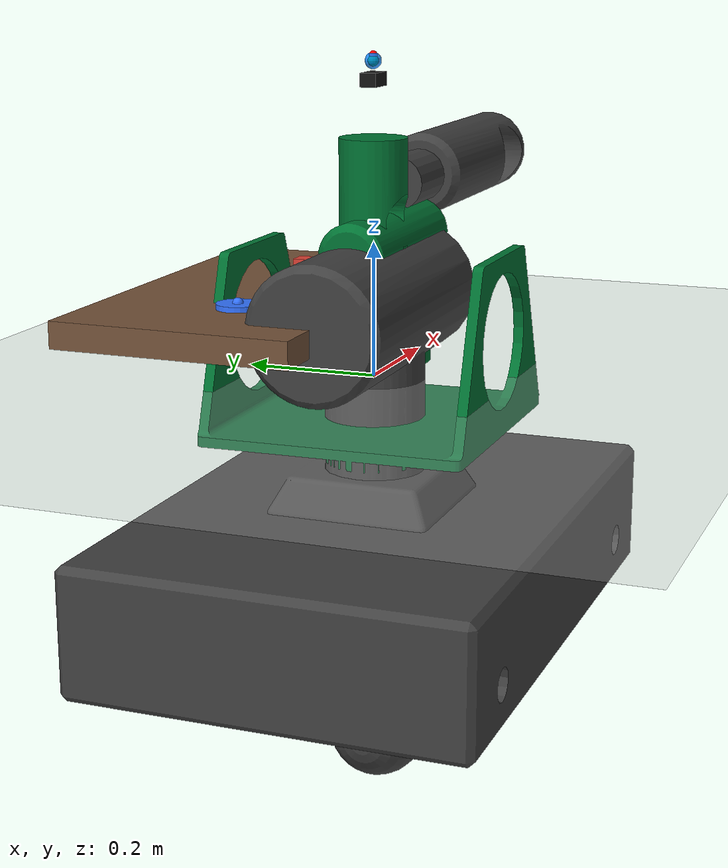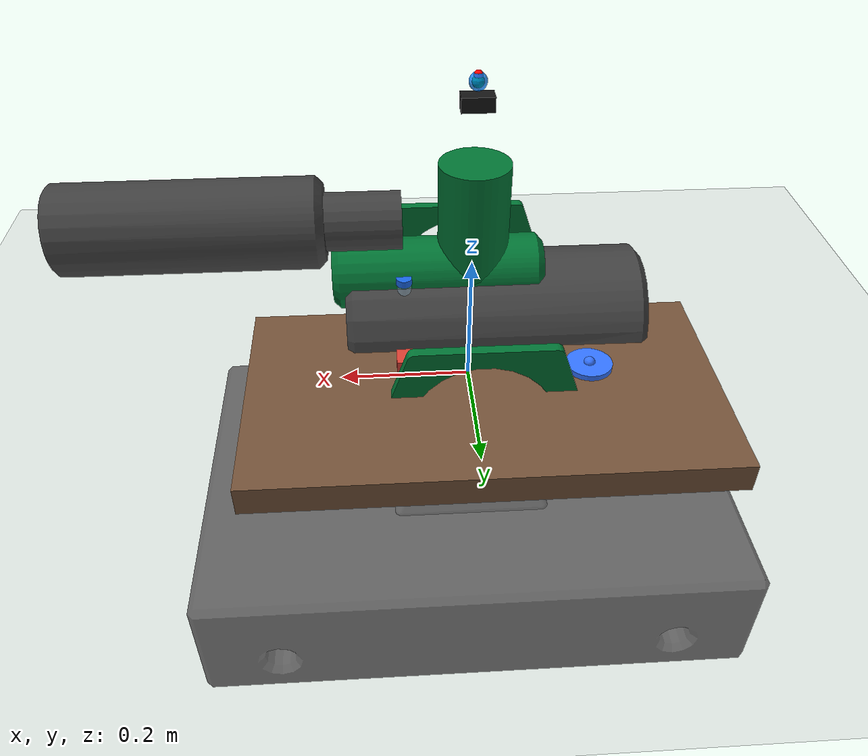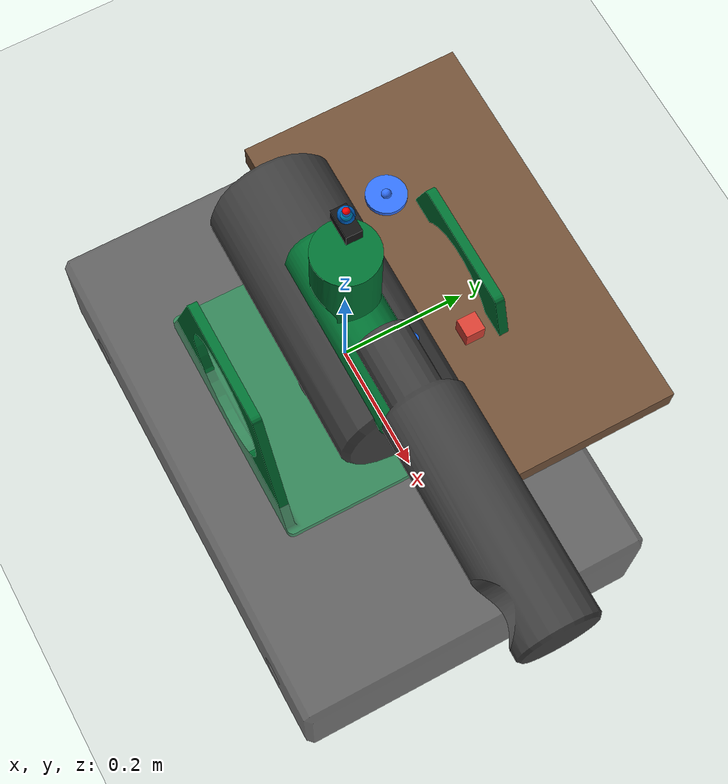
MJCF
<mujoco model="dofbot">
  <compiler angle="radian" meshdir="meshes" autolimits="true"/>
  <option timestep="0.005" gravity="0 0 -9.81" integrator="RK4"/>
  <size njmax="3000" nconmax="800"/>

  <visual>
    <headlight ambient="0.5 0.5 0.5" diffuse="0.8 0.8 0.8" specular="0.15 0.15 0.15"/>
    <rgba haze="0.15 0.25 0.35 1"/>
  </visual>

  <statistic center="0 0 0.18" extent="0.50"/>

  <default>
    <default class="robot">
      <joint armature="0.01" damping="0.25" frictionloss="0.02"/>
      <geom type="mesh" density="700" condim="3" contype="1" conaffinity="1" group="1"/>
    </default>

    <default class="visual_only">
      <geom type="mesh" density="0" contype="0" conaffinity="0" group="2"/>
    </default>

    <default class="col">
      <geom type="capsule" rgba="0 0 0 0"
            friction="0.9 0.05 0.01"
            condim="4" solref="0.004 1" solimp="0.9 0.95 0.001"
            contype="1" conaffinity="1" group="3"/>
    </default>

    <default class="finger_col">
      <geom type="box"
            friction="1.2 0.05 0.01"
            condim="4" solref="0.003 1" solimp="0.9 0.95 0.001"
            contype="1" conaffinity="1" group="3"/>
    </default>
  </default>

  <asset>
    <material name="mat_gray"  rgba="0.25 0.25 0.25 1"/>
    <material name="mat_green" rgba="0.0 0.45 0.20 1"/>
    <material name="mat_white" rgba="0.75 0.75 0.75 1"/>
    <material name="mat_black" rgba="0.08 0.08 0.08 1"/>
    <material name="mat_goal"  rgba="1 0.2 0.2 0.9"/>
    <material name="mat_table" rgba="0.45 0.32 0.22 1"/>
    <material name="mat_cube"  rgba="0.85 0.25 0.20 1"/>

    <texture name="tex_floor_checker"
             type="2d"
             builtin="checker"
             rgb1="0.82 0.82 0.82"
             rgb2="0.62 0.62 0.62"
             width="512"
             height="512"/>

    <material name="mat_floor_checker"
              texture="tex_floor_checker"
              texrepeat="8 8"
              texuniform="true"
              reflectance="0.05"/>

    <mesh name="base_link_mesh" file="base_link.STL"/>
    <mesh name="link1_mesh" file="link1.STL"/>
    <mesh name="link2_mesh" file="link2.STL"/>
    <mesh name="link3_mesh" file="link3.STL"/>
    <mesh name="link4_mesh" file="link4.STL"/>
    <mesh name="link5_mesh" file="link5.STL"/>
  </asset>

  <worldbody>
    <light pos="0 0 1.5" dir="0 0 -1"/>
    <camera name="front_cam" pos="0 1.1 0.7" mode="targetbody" target="base_link"/>
    <geom name="floor" type="plane" size="2 2 0.1" material="mat_floor_checker"/>

    <body name="table" pos="0.00 0.18 0.10">
      <geom name="table_geom" type="box" size="0.32 0.18 0.02" material="mat_table"
            friction="1.0 0.05 0.01"/>
    </body>

    <body name="object_main" pos="0.10 0.15 0.136">
      <freejoint name="object_main_free"/>
      <inertial pos="0 0 0" mass="0.03" diaginertia="0.00001 0.00001 0.00001"/>
      <geom name="object_main_geom" type="box" size="0.015 0.015 0.015" material="mat_cube"
            friction="1.1 0.05 0.01"/>
      <site name="object_main_site" pos="0 0 0" size="0.007" rgba="1 1 0 1"/>
    </body>

    <body name="object_bottle" pos="0.10 0.05 0.150">
      <freejoint name="object_bottle_free"/>
      <inertial pos="0 0 -0.01" mass="0.03" diaginertia="0.00001 0.00001 0.00001"/>

      <geom name="object_bottle_geom" type="cylinder" size="0.015 0.030" rgba="0.7 0.85 0.95 0.5"
            friction="1.1 0.05 0.01"/>

      <geom name="object_bottle_neck" type="cylinder" size="0.010 0.010" pos="0 0 0.040"
            rgba="0.7 0.85 0.95 0.5" friction="1.1 0.05 0.01"/>

      <geom name="object_bottle_cap" type="cylinder" size="0.011 0.005" pos="0 0 0.055"
            rgba="0.1 0.4 0.9 1" friction="1.1 0.05 0.01"/>

      <site name="object_bottle_site" pos="0 0 0" size="0.007" rgba="1 1 0 1"/>
    </body>

    <body name="target_blue" pos="-0.15 0.15 0.124">
      <geom name="target_blue_geom" type="cylinder" size="0.032 0.004"
            rgba="0.2 0.45 1.0 0.9" contype="0" conaffinity="0"/>
      <site name="target_blue_site" pos="0 0 0.004" size="0.008" rgba="0.2 0.45 1 1"/>
    </body>

    <body name="target_purple" pos="-0.15 0.05 0.124">
      <geom name="target_purple_geom" type="cylinder" size="0.032 0.004"
            rgba="0.65 0.35 0.85 0.9" contype="0" conaffinity="0"/>
      <site name="target_purple_site" pos="0 0 0.004" size="0.008" rgba="0.65 0.35 0.85 1"/>
    </body>

    <body name="base_link" pos="0 0 0">
      <inertial pos="0 0 0.03" mass="0.45" diaginertia="0.001 0.001 0.001"/>
      <geom class="robot" name="base_link_geom" mesh="base_link_mesh" material="mat_gray"/>

      <geom class="col" name="base_link_col" type="cylinder"
            pos="0 0 0.035" size="0.0675 0.035"/>

      <body name="link1" pos="0 0 0.06605" euler="-0.010805 0 0">
        <joint name="joint1" type="hinge" axis="0 0 1" range="-1.5708 1.5708"/>
        <inertial pos="0 0 0.02" mass="0.12" diaginertia="0.0004 0.0004 0.0002"/>
        <geom class="robot" name="link1_geom" mesh="link1_mesh" material="mat_green"/>
        <geom class="col" name="link1_col" fromto="0 0 0.005 0 0 0.055" size="0.018"/>

        <body name="link2" pos="0 -0.00031873 0.04145" euler="0 1.5708 0">
          <joint name="joint2" type="hinge" axis="0 0 1" range="-1.5708 1.5708"/>
          <inertial pos="-0.04 0 0" mass="0.15" diaginertia="0.00035 0.00035 0.00012"/>
          <geom class="robot" name="link2_geom" mesh="link2_mesh" material="mat_gray"/>
          <geom class="col" name="link2_col" fromto="0 0 0 -0.08285 0 0" size="0.014"/>

          <body name="link3" pos="-0.08285 0 0">
            <joint name="joint3" type="hinge" axis="0 0 1" range="-1.5708 1.5708"/>
            <inertial pos="-0.04 0 0" mass="0.12" diaginertia="0.00030 0.00030 0.00010"/>
            <geom class="robot" name="link3_geom" mesh="link3_mesh" material="mat_green"/>
            <geom class="col" name="link3_col" fromto="0 0 0 -0.08285 0 0" size="0.013"/>

            <body name="link4" pos="-0.08285 0 0" euler="0 0 0.0083081">
              <joint name="joint4" type="hinge" axis="0 0 1" range="-1.5708 1.5708"/>
              <inertial pos="-0.0395 0 0" mass="0.10" diaginertia="0.00018 0.00018 0.00008"/>
              <geom class="robot" name="link4_geom" mesh="link4_mesh" material="mat_gray"/>
              <geom class="col" name="link4_col" fromto="0 0 0 -0.07905 0 0" size="0.012"/>

              <body name="link5" pos="-0.07905 -0.001 0" euler="0 -1.57 0">
                <joint name="joint5" type="hinge" axis="0 0 1" range="-1.5708 3.1416"/>
                <inertial pos="0 0 0.018" mass="0.08" diaginertia="0.00010 0.00010 0.00005"/>
                <geom class="robot" name="link5_geom" mesh="link5_mesh" material="mat_green"/>
                <geom class="col" name="link5_col" fromto="0 0 0 0 0 0.070" size="0.010"/>

                <site name="ee_site" pos="0 0 0.108" size="0.008" rgba="0 1 0 1"/>
                <site name="tool_site" pos="0 0 0.108" size="0.012" rgba="0 0.5 1 0.8"/>

                <body name="gripper_base" pos="0 0 0.082">
                  <inertial pos="0 0 0" mass="0.05" diaginertia="0.00003 0.00003 0.00003"/>

                  <geom name="gripper_palm" type="box" size="0.022 0.012 0.010"
                        material="mat_black" friction="1.0 0.05 0.01"/>

                  <site name="grasp_site" pos="0 0 0.034" size="0.006" rgba="1 0 0 1"/>

                  <body name="left_finger" pos="0 0.033 0.022">
                    <joint name="left_finger_joint" type="slide" axis="0 -1 0"
                           range="0 0.028" damping="0.5" armature="0.001"/>
                    <inertial pos="0 0 0.020" mass="0.015"
                              diaginertia="0.00001 0.00001 0.00001"/>
                    <geom class="finger_col" name="left_finger_geom"
                          pos="0 0 0.020" size="0.004 0.003 0.020"
                          material="mat_black"/>
                  </body>

                  <body name="right_finger" pos="0 -0.033 0.022">
                    <joint name="right_finger_joint" type="slide" axis="0 1 0"
                           range="0 0.028" damping="0.5" armature="0.001"/>
                    <inertial pos="0 0 0.020" mass="0.015"
                              diaginertia="0.00001 0.00001 0.00001"/>
                    <geom class="finger_col" name="right_finger_geom"
                          pos="0 0 0.020" size="0.004 0.003 0.020"
                          material="mat_black"/>
                  </body>
                </body>
              </body>
            </body>
          </body>
        </body>
      </body>
    </body>
  </worldbody>

  <equality>
    <joint joint1="left_finger_joint" joint2="right_finger_joint" polycoef="0 1 0 0 0"/>
  </equality>

  <contact>
    <exclude body1="base_link" body2="link1"/>
    <exclude body1="base_link" body2="link2"/>
    <exclude body1="base_link" body2="link3"/>
    <exclude body1="link1" body2="link2"/>
    <exclude body1="link1" body2="link3"/>
    <exclude body1="link1" body2="link4"/>
    <exclude body1="link1" body2="link5"/>
    <exclude body1="link2" body2="link3"/>
    <exclude body1="link2" body2="link4"/>
    <exclude body1="link2" body2="link5"/>
    <exclude body1="link3" body2="link4"/>
    <exclude body1="link3" body2="link5"/>
    <exclude body1="link4" body2="link5"/>

    <exclude body1="link5" body2="gripper_base"/>
    <exclude body1="gripper_base" body2="left_finger"/>
    <exclude body1="gripper_base" body2="right_finger"/>
    <exclude body1="left_finger" body2="right_finger"/>
  </contact>

  <actuator>
    <position name="a_joint1" joint="joint1" kp="45" kv="4.5"
              ctrlrange="-1.5708 1.5708" forcerange="-8 8"/>
    <position name="a_joint2" joint="joint2" kp="40" kv="4.0"
              ctrlrange="-1.5708 1.5708" forcerange="-8 8"/>
    <position name="a_joint3" joint="joint3" kp="35" kv="3.5"
              ctrlrange="-1.5708 1.5708" forcerange="-6 6"/>
    <position name="a_joint4" joint="joint4" kp="25" kv="2.5"
              ctrlrange="-1.5708 1.5708" forcerange="-5 5"/>
    <position name="a_joint5" joint="joint5" kp="20" kv="2.0"
              ctrlrange="-1.5708 3.1416" forcerange="-4 4"/>

    <position name="a_gripper" joint="left_finger_joint" kp="120" kv="8"
              ctrlrange="0 0.028" forcerange="-3 3"/>
  </actuator>

  <sensor>
    <jointpos name="joint1_pos" joint="joint1"/>
    <jointpos name="joint2_pos" joint="joint2"/>
    <jointpos name="joint3_pos" joint="joint3"/>
    <jointpos name="joint4_pos" joint="joint4"/>
    <jointpos name="joint5_pos" joint="joint5"/>
    <jointpos name="left_finger_pos" joint="left_finger_joint"/>

    <jointvel name="joint1_vel" joint="joint1"/>
    <jointvel name="joint2_vel" joint="joint2"/>
    <jointvel name="joint3_vel" joint="joint3"/>
    <jointvel name="joint4_vel" joint="joint4"/>
    <jointvel name="joint5_vel" joint="joint5"/>
    <jointvel name="left_finger_vel" joint="left_finger_joint"/>

    <framepos name="ee_pos" objtype="site" objname="ee_site"/>
    <framepos name="grasp_pos" objtype="site" objname="grasp_site"/>
    <framepos name="object_main_pos" objtype="site" objname="object_main_site"/>
    <framepos name="object_bottle_pos" objtype="site" objname="object_bottle_site"/>
    <framepos name="target_blue_pos" objtype="site" objname="target_blue_site"/>
    <framepos name="target_purple_pos" objtype="site" objname="target_purple_site"/>
  </sensor>
</mujoco>
